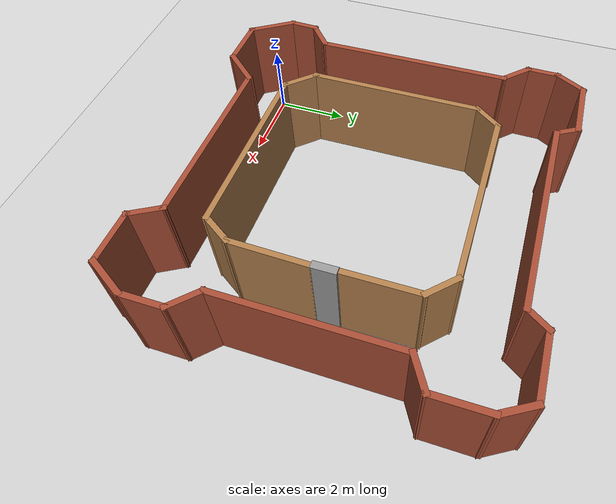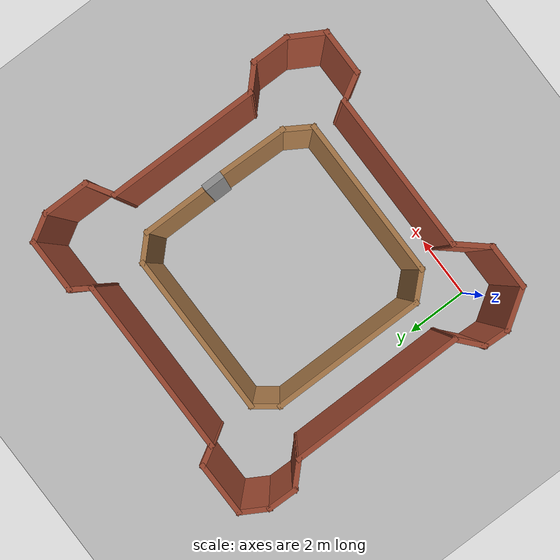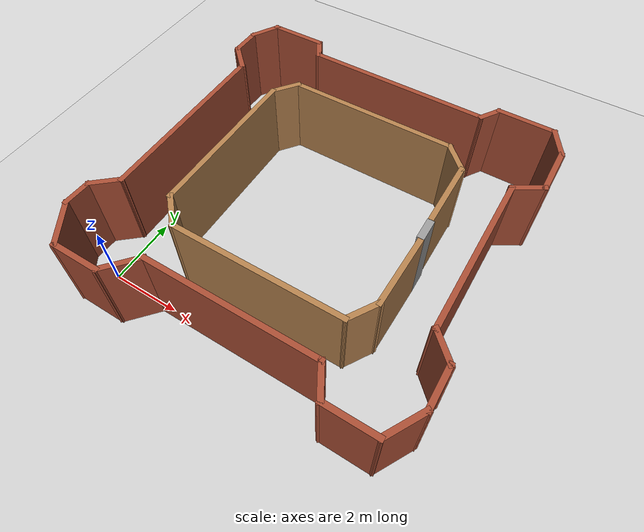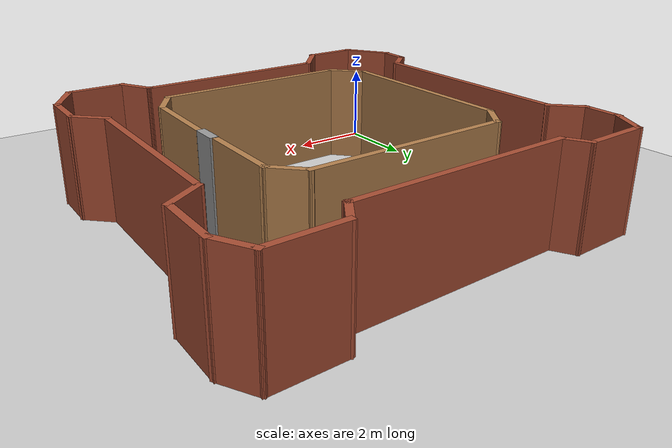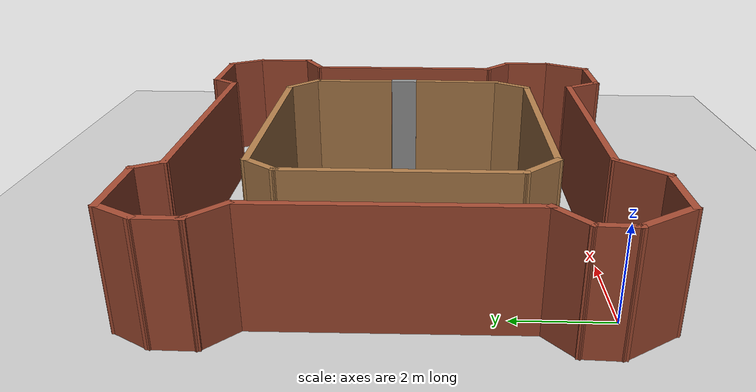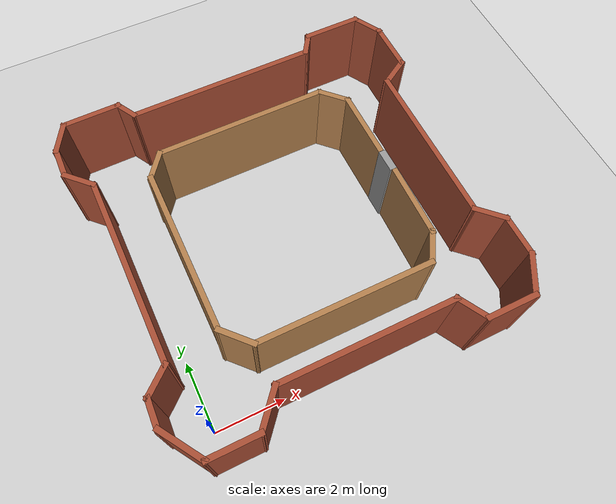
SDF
<sdf version='1.4'>
  <world name='default'>
    <!-- A global light source -->
    <include>
      <uri>model://sun</uri>
    </include>

    <!-- A ground plane -->
    <include>
      <uri>model://ground_plane</uri>
    </include>

    <physics type="ode">
      <real_time_update_rate>1000.0</real_time_update_rate>
      <max_step_size>0.001</max_step_size>
      <real_time_factor>1</real_time_factor>
      <ode>
        <solver>
          <type>quick</type>
          <iters>150</iters>
          <precon_iters>0</precon_iters>
          <sor>1.400000</sor>
          <use_dynamic_moi_rescaling>1</use_dynamic_moi_rescaling>
        </solver>
        <constraints>
          <cfm>0.00001</cfm>
          <erp>0.2</erp>
          <contact_max_correcting_vel>2000.000000</contact_max_correcting_vel>
          <contact_surface_layer>0.01000</contact_surface_layer>
        </constraints>
      </ode>
    </physics>

    <!-- A turtlebot symbol -->
    <include>
      <uri>model://castle</uri>
    </include>

    <scene>
      <ambient>0.4 0.4 0.4 1</ambient>
      <background>0.7 0.7 0.7 1</background>
      <shadows>true</shadows>
    </scene>

    <gui fullscreen='0'>
      <camera name='user_camera'>
        <pose>0.0 0.0 17.0 0 1.5708 0</pose>
        <view_controller>orbit</view_controller>
      </camera>
    </gui>
  </world>
</sdf>

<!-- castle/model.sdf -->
<sdf version='1.6'>
  <model name='castle.launch'>
    <pose frame=''>4.00899 4.03073 0 0 -0 0</pose>
    <link name='Door_0'>
      <collision name='Door_0_Collision'>
        <geometry>
          <box>
            <size>0.63 0.2 2.505</size>
          </box>
        </geometry>
        <pose frame=''>0 0 1.2535 0 -0 0</pose>
      </collision>
      <visual name='Door_0_Visual'>
        <pose frame=''>0 0 1.2535 0 -0 0</pose>
        <geometry>
          <box>
            <size>0.63 0.2 2.505</size>
          </box>
        </geometry>
        <material>
          <script>
            <uri>file://media/materials/scripts/gazebo.material</uri>
            <name>Gazebo/Grey</name>
          </script>
        </material>
      </visual>
      <pose frame=''>2.99574 0.054075 0 0 0 -1.56633</pose>
    </link>
    <link name='Wall_13'>
      <collision name='Wall_13_Collision'>
        <geometry>
          <box>
            <size>1.49 0.15 2.5</size>
          </box>
        </geometry>
        <pose frame=''>0 0 1.25 0 -0 0</pose>
      </collision>
      <visual name='Wall_13_Visual'>
        <pose frame=''>0 0 1.25 0 -0 0</pose>
        <geometry>
          <box>
            <size>1.49 0.15 2.5</size>
          </box>
        </geometry>
        <material>
          <script>
            <uri>file://media/materials/scripts/gazebo.material</uri>
            <name>Gazebo/Bricks</name>
          </script>
          <ambient>1 1 1 1</ambient>
        </material>
        <meta>
          <layer>0</layer>
        </meta>
      </visual>
      <pose frame=''>-3.66899 -4.92073 0 0 -0 0</pose>
    </link>
    <link name='Wall_14'>
      <collision name='Wall_14_Collision'>
        <geometry>
          <box>
            <size>1.24202 0.15 2.5</size>
          </box>
        </geometry>
        <pose frame=''>0 0 1.25 0 -0 0</pose>
      </collision>
      <visual name='Wall_14_Visual'>
        <pose frame=''>0 0 1.25 0 -0 0</pose>
        <geometry>
          <box>
            <size>1.24202 0.15 2.5</size>
          </box>
        </geometry>
        <material>
          <script>
            <uri>file://media/materials/scripts/gazebo.material</uri>
            <name>Gazebo/Bricks</name>
          </script>
          <ambient>1 1 1 1</ambient>
        </material>
        <meta>
          <layer>0</layer>
        </meta>
      </visual>
      <pose frame=''>-2.63899 -4.51023 0 0 -0 0.850846</pose>
    </link>
    <link name='Wall_16'>
      <collision name='Wall_16_Collision'>
        <geometry>
          <box>
            <size>5 0.15 2.5</size>
          </box>
        </geometry>
        <pose frame=''>0 0 1.25 0 -0 0</pose>
      </collision>
      <visual name='Wall_16_Visual'>
        <pose frame=''>0 0 1.25 0 -0 0</pose>
        <geometry>
          <box>
            <size>5 0.15 2.5</size>
          </box>
        </geometry>
        <material>
          <script>
            <uri>file://media/materials/scripts/gazebo.material</uri>
            <name>Gazebo/Bricks</name>
          </script>
          <ambient>1 1 1 1</ambient>
        </material>
        <meta>
          <layer>0</layer>
        </meta>
      </visual>
      <pose frame=''>0.146009 -4.09973 0 0 -0 0</pose>
    </link>
    <link name='Wall_17'>
      <collision name='Wall_17_Collision'>
        <geometry>
          <box>
            <size>1.0086 0.15 2.5</size>
          </box>
        </geometry>
        <pose frame=''>0 0 1.25 0 -0 0</pose>
      </collision>
      <visual name='Wall_17_Visual'>
        <pose frame=''>0 0 1.25 0 -0 0</pose>
        <geometry>
          <box>
            <size>1.0086 0.15 2.5</size>
          </box>
        </geometry>
        <material>
          <script>
            <uri>file://media/materials/scripts/gazebo.material</uri>
            <name>Gazebo/Bricks</name>
          </script>
          <ambient>1 1 1 1</ambient>
        </material>
        <meta>
          <layer>0</layer>
        </meta>
      </visual>
      <pose frame=''>2.78351 -4.47272 0 0 -0 -1.05295</pose>
    </link>
    <link name='Wall_18'>
      <collision name='Wall_18_Collision'>
        <geometry>
          <box>
            <size>1.5 0.15 2.5</size>
          </box>
        </geometry>
        <pose frame=''>0 0 1.25 0 -0 0</pose>
      </collision>
      <visual name='Wall_18_Visual'>
        <pose frame=''>0 0 1.25 0 -0 0</pose>
        <geometry>
          <box>
            <size>1.5 0.15 2.5</size>
          </box>
        </geometry>
        <material>
          <script>
            <uri>file://media/materials/scripts/gazebo.material</uri>
            <name>Gazebo/Bricks</name>
          </script>
          <ambient>1 1 1 1</ambient>
        </material>
        <meta>
          <layer>0</layer>
        </meta>
      </visual>
      <pose frame=''>3.67101 -4.84572 0 0 -0 0</pose>
    </link>
    <link name='Wall_21'>
      <collision name='Wall_21_Collision'>
        <geometry>
          <box>
            <size>1.25 0.15 2.5</size>
          </box>
        </geometry>
        <pose frame=''>0 0 1.25 0 -0 0</pose>
      </collision>
      <visual name='Wall_21_Visual'>
        <pose frame=''>0 0 1.25 0 -0 0</pose>
        <geometry>
          <box>
            <size>1.25 0.15 2.5</size>
          </box>
        </geometry>
        <material>
          <script>
            <uri>file://media/materials/scripts/gazebo.material</uri>
            <name>Gazebo/Bricks</name>
          </script>
          <ambient>1 1 1 1</ambient>
        </material>
        <meta>
          <layer>0</layer>
        </meta>
      </visual>
      <pose frame=''>4.62101 -4.36923 0 0 -0 1.04737</pose>
    </link>
    <link name='Wall_22'>
      <collision name='Wall_22_Collision'>
        <geometry>
          <box>
            <size>1.25 0.15 2.5</size>
          </box>
        </geometry>
        <pose frame=''>0 0 1.25 0 -0 0</pose>
      </collision>
      <visual name='Wall_22_Visual'>
        <pose frame=''>0 0 1.25 0 -0 0</pose>
        <geometry>
          <box>
            <size>1.25 0.15 2.5</size>
          </box>
        </geometry>
        <material>
          <script>
            <uri>file://media/materials/scripts/gazebo.material</uri>
            <name>Gazebo/Bricks</name>
          </script>
          <ambient>1 1 1 1</ambient>
        </material>
        <meta>
          <layer>0</layer>
        </meta>
      </visual>
      <pose frame=''>4.89601 -3.34273 0 0 -0 1.5708</pose>
    </link>
    <link name='Wall_23'>
      <collision name='Wall_23_Collision'>
        <geometry>
          <box>
            <size>0.990418 0.15 2.5</size>
          </box>
        </geometry>
        <pose frame=''>0 0 1.25 0 -0 0</pose>
      </collision>
      <visual name='Wall_23_Visual'>
        <pose frame=''>0 0 1.25 0 -0 0</pose>
        <geometry>
          <box>
            <size>0.990418 0.15 2.5</size>
          </box>
        </geometry>
        <material>
          <script>
            <uri>file://media/materials/scripts/gazebo.material</uri>
            <name>Gazebo/Bricks</name>
          </script>
          <ambient>1 1 1 1</ambient>
        </material>
        <meta>
          <layer>0</layer>
        </meta>
      </visual>
      <pose frame=''>4.59551 -2.49923 0 0 -0 2.36798</pose>
    </link>
    <link name='Wall_26'>
      <collision name='Wall_26_Collision'>
        <geometry>
          <box>
            <size>4.75004 0.15 2.5</size>
          </box>
        </geometry>
        <pose frame=''>0 0 1.25 0 -0 0</pose>
      </collision>
      <visual name='Wall_26_Visual'>
        <pose frame=''>0 0 1.25 0 -0 0</pose>
        <geometry>
          <box>
            <size>4.75004 0.15 2.5</size>
          </box>
        </geometry>
        <material>
          <script>
            <uri>file://media/materials/scripts/gazebo.material</uri>
            <name>Gazebo/Bricks</name>
          </script>
          <ambient>1 1 1 1</ambient>
        </material>
        <meta>
          <layer>0</layer>
        </meta>
      </visual>
      <pose frame=''>4.30501 0.094275 0 0 -0 1.56645</pose>
    </link>
    <link name='Wall_28'>
      <collision name='Wall_28_Collision'>
        <geometry>
          <box>
            <size>0.998259 0.15 2.5</size>
          </box>
        </geometry>
        <pose frame=''>0 0 1.25 0 -0 0</pose>
      </collision>
      <visual name='Wall_28_Visual'>
        <pose frame=''>0 0 1.25 0 -0 0</pose>
        <geometry>
          <box>
            <size>0.998259 0.15 2.5</size>
          </box>
        </geometry>
        <material>
          <script>
            <uri>file://media/materials/scripts/gazebo.material</uri>
            <name>Gazebo/Bricks</name>
          </script>
          <ambient>1 1 1 1</ambient>
        </material>
        <meta>
          <layer>0</layer>
        </meta>
      </visual>
      <pose frame=''>4.67801 2.61377 0 0 -0 0.543856</pose>
    </link>
    <link name='Wall_30'>
      <collision name='Wall_30_Collision'>
        <geometry>
          <box>
            <size>1.5 0.15 2.5</size>
          </box>
        </geometry>
        <pose frame=''>0 0 1.25 0 -0 0</pose>
      </collision>
      <visual name='Wall_30_Visual'>
        <pose frame=''>0 0 1.25 0 -0 0</pose>
        <geometry>
          <box>
            <size>1.5 0.15 2.5</size>
          </box>
        </geometry>
        <material>
          <script>
            <uri>file://media/materials/scripts/gazebo.material</uri>
            <name>Gazebo/Bricks</name>
          </script>
          <ambient>1 1 1 1</ambient>
        </material>
        <meta>
          <layer>0</layer>
        </meta>
      </visual>
      <pose frame=''>5.04101 3.50827 0 0 -0 1.5708</pose>
    </link>
    <link name='Wall_31'>
      <collision name='Wall_31_Collision'>
        <geometry>
          <box>
            <size>1 0.15 2.5</size>
          </box>
        </geometry>
        <pose frame=''>0 0 1.25 0 -0 0</pose>
      </collision>
      <visual name='Wall_31_Visual'>
        <pose frame=''>0 0 1.25 0 -0 0</pose>
        <geometry>
          <box>
            <size>1 0.15 2.5</size>
          </box>
        </geometry>
        <material>
          <script>
            <uri>file://media/materials/scripts/gazebo.material</uri>
            <name>Gazebo/Bricks</name>
          </script>
          <ambient>1 1 1 1</ambient>
        </material>
        <meta>
          <layer>0</layer>
        </meta>
      </visual>
      <pose frame=''>4.82851 4.55128 0 0 -0 2.09447</pose>
    </link>
    <link name='Wall_32'>
      <collision name='Wall_32_Collision'>
        <geometry>
          <box>
            <size>1.75 0.15 2.5</size>
          </box>
        </geometry>
        <pose frame=''>0 0 1.25 0 -0 0</pose>
      </collision>
      <visual name='Wall_32_Visual'>
        <pose frame=''>0 0 1.25 0 -0 0</pose>
        <geometry>
          <box>
            <size>1.75 0.15 2.5</size>
          </box>
        </geometry>
        <material>
          <script>
            <uri>file://media/materials/scripts/gazebo.material</uri>
            <name>Gazebo/Bricks</name>
          </script>
          <ambient>1 1 1 1</ambient>
        </material>
        <meta>
          <layer>0</layer>
        </meta>
      </visual>
      <pose frame=''>3.81601 4.91927 0 0 -0 3.14159</pose>
    </link>
    <link name='Wall_33'>
      <collision name='Wall_33_Collision'>
        <geometry>
          <box>
            <size>0.769121 0.15 2.5</size>
          </box>
        </geometry>
        <pose frame=''>0 0 1.25 0 -0 0</pose>
      </collision>
      <visual name='Wall_33_Visual'>
        <pose frame=''>0 0 1.25 0 -0 0</pose>
        <geometry>
          <box>
            <size>0.769121 0.15 2.5</size>
          </box>
        </geometry>
        <material>
          <script>
            <uri>file://media/materials/scripts/gazebo.material</uri>
            <name>Gazebo/Bricks</name>
          </script>
          <ambient>1 1 1 1</ambient>
        </material>
        <meta>
          <layer>0</layer>
        </meta>
      </visual>
      <pose frame=''>2.84401 4.66177 0 0 -0 -2.1597</pose>
    </link>
    <link name='Wall_34'>
      <collision name='Wall_34_Collision'>
        <geometry>
          <box>
            <size>5.5 0.15 2.5</size>
          </box>
        </geometry>
        <pose frame=''>0 0 1.25 0 -0 0</pose>
      </collision>
      <visual name='Wall_34_Visual'>
        <pose frame=''>0 0 1.25 0 -0 0</pose>
        <geometry>
          <box>
            <size>5.5 0.15 2.5</size>
          </box>
        </geometry>
        <material>
          <script>
            <uri>file://media/materials/scripts/gazebo.material</uri>
            <name>Gazebo/Bricks</name>
          </script>
          <ambient>1 1 1 1</ambient>
        </material>
        <meta>
          <layer>0</layer>
        </meta>
      </visual>
      <pose frame=''>-0.002991 4.40428 0 0 -0 3.14159</pose>
    </link>
    <link name='Wall_37'>
      <collision name='Wall_37_Collision'>
        <geometry>
          <box>
            <size>0.75 0.15 2.5</size>
          </box>
        </geometry>
        <pose frame=''>0 0 1.25 0 -0 0</pose>
      </collision>
      <visual name='Wall_37_Visual'>
        <pose frame=''>0 0 1.25 0 -0 0</pose>
        <geometry>
          <box>
            <size>0.75 0.15 2.5</size>
          </box>
        </geometry>
        <material>
          <script>
            <uri>file://media/materials/scripts/gazebo.material</uri>
            <name>Gazebo/Bricks</name>
          </script>
          <ambient>1 1 1 1</ambient>
        </material>
        <meta>
          <layer>0</layer>
        </meta>
      </visual>
      <pose frame=''>-2.82799 4.66427 0 0 -0 2.09408</pose>
    </link>
    <link name='Wall_38'>
      <collision name='Wall_38_Collision'>
        <geometry>
          <box>
            <size>1.73687 0.15 2.5</size>
          </box>
        </geometry>
        <pose frame=''>0 0 1.25 0 -0 0</pose>
      </collision>
      <visual name='Wall_38_Visual'>
        <pose frame=''>0 0 1.25 0 -0 0</pose>
        <geometry>
          <box>
            <size>1.73687 0.15 2.5</size>
          </box>
        </geometry>
        <material>
          <script>
            <uri>file://media/materials/scripts/gazebo.material</uri>
            <name>Gazebo/Bricks</name>
          </script>
          <ambient>1 1 1 1</ambient>
        </material>
        <meta>
          <layer>0</layer>
        </meta>
      </visual>
      <pose frame=''>-3.77149 4.91777 0 0 -0 -3.1334</pose>
    </link>
    <link name='Wall_39'>
      <collision name='Wall_39_Collision'>
        <geometry>
          <box>
            <size>0.99985 0.15 2.5</size>
          </box>
        </geometry>
        <pose frame=''>0 0 1.25 0 -0 0</pose>
      </collision>
      <visual name='Wall_39_Visual'>
        <pose frame=''>0 0 1.25 0 -0 0</pose>
        <geometry>
          <box>
            <size>0.99985 0.15 2.5</size>
          </box>
        </geometry>
        <material>
          <script>
            <uri>file://media/materials/scripts/gazebo.material</uri>
            <name>Gazebo/Bricks</name>
          </script>
          <ambient>1 1 1 1</ambient>
        </material>
        <meta>
          <layer>0</layer>
        </meta>
      </visual>
      <pose frame=''>-4.77749 4.54328 0 0 -0 -2.09447</pose>
    </link>
    <link name='Wall_40'>
      <collision name='Wall_40_Collision'>
        <geometry>
          <box>
            <size>0.987101 0.15 2.5</size>
          </box>
        </geometry>
        <pose frame=''>0 0 1.25 0 -0 0</pose>
      </collision>
      <visual name='Wall_40_Visual'>
        <pose frame=''>0 0 1.25 0 -0 0</pose>
        <geometry>
          <box>
            <size>0.987101 0.15 2.5</size>
          </box>
        </geometry>
        <material>
          <script>
            <uri>file://media/materials/scripts/gazebo.material</uri>
            <name>Gazebo/Bricks</name>
          </script>
          <ambient>1 1 1 1</ambient>
        </material>
        <meta>
          <layer>0</layer>
        </meta>
      </visual>
      <pose frame=''>-4.99649 3.75678 0 0 -0 -1.58633</pose>
    </link>
    <link name='Wall_41'>
      <collision name='Wall_41_Collision'>
        <geometry>
          <box>
            <size>1 0.15 2.5</size>
          </box>
        </geometry>
        <pose frame=''>0 0 1.25 0 -0 0</pose>
      </collision>
      <visual name='Wall_41_Visual'>
        <pose frame=''>0 0 1.25 0 -0 0</pose>
        <geometry>
          <box>
            <size>1 0.15 2.5</size>
          </box>
        </geometry>
        <material>
          <script>
            <uri>file://media/materials/scripts/gazebo.material</uri>
            <name>Gazebo/Bricks</name>
          </script>
          <ambient>1 1 1 1</ambient>
        </material>
        <meta>
          <layer>0</layer>
        </meta>
      </visual>
      <pose frame=''>-4.70249 3.03777 0 0 -0 -0.785398</pose>
    </link>
    <link name='Wall_43'>
      <collision name='Wall_43_Collision'>
        <geometry>
          <box>
            <size>5.47004 0.15 2.5</size>
          </box>
        </geometry>
        <pose frame=''>0 0 1.25 0 -0 0</pose>
      </collision>
      <visual name='Wall_43_Visual'>
        <pose frame=''>0 0 1.25 0 -0 0</pose>
        <geometry>
          <box>
            <size>5.47004 0.15 2.5</size>
          </box>
        </geometry>
        <material>
          <script>
            <uri>file://media/materials/scripts/gazebo.material</uri>
            <name>Gazebo/Bricks</name>
          </script>
          <ambient>1 1 1 1</ambient>
        </material>
        <meta>
          <layer>0</layer>
        </meta>
      </visual>
      <pose frame=''>-4.38699 0.077275 0 0 -0 -1.56516</pose>
    </link>
    <link name='Wall_47'>
      <collision name='Wall_47_Collision'>
        <geometry>
          <box>
            <size>0.99086 0.15 2.5</size>
          </box>
        </geometry>
        <pose frame=''>0 0 1.25 0 -0 0</pose>
      </collision>
      <visual name='Wall_47_Visual'>
        <pose frame=''>0 0 1.25 0 -0 0</pose>
        <geometry>
          <box>
            <size>0.99086 0.15 2.5</size>
          </box>
        </geometry>
        <material>
          <script>
            <uri>file://media/materials/scripts/gazebo.material</uri>
            <name>Gazebo/Bricks</name>
          </script>
          <ambient>1 1 1 1</ambient>
        </material>
        <meta>
          <layer>0</layer>
        </meta>
      </visual>
      <pose frame=''>-4.69099 -2.85672 0 0 -0 -2.43194</pose>
    </link>
    <link name='Wall_49'>
      <collision name='Wall_49_Collision'>
        <geometry>
          <box>
            <size>0.880695 0.15 2.5</size>
          </box>
        </geometry>
        <pose frame=''>0 0 1.25 0 -0 0</pose>
      </collision>
      <visual name='Wall_49_Visual'>
        <pose frame=''>0 0 1.25 0 -0 0</pose>
        <geometry>
          <box>
            <size>0.880695 0.15 2.5</size>
          </box>
        </geometry>
        <material>
          <script>
            <uri>file://media/materials/scripts/gazebo.material</uri>
            <name>Gazebo/Bricks</name>
          </script>
          <ambient>1 1 1 1</ambient>
        </material>
        <meta>
          <layer>0</layer>
        </meta>
      </visual>
      <pose frame=''>-5.02499 -3.49573 0 0 -0 -1.61187</pose>
    </link>
    <link name='Wall_50'>
      <collision name='Wall_50_Collision'>
        <geometry>
          <box>
            <size>1.42087 0.15 2.5</size>
          </box>
        </geometry>
        <pose frame=''>0 0 1.25 0 -0 0</pose>
      </collision>
      <visual name='Wall_50_Visual'>
        <pose frame=''>0 0 1.25 0 -0 0</pose>
        <geometry>
          <box>
            <size>1.42087 0.15 2.5</size>
          </box>
        </geometry>
        <material>
          <script>
            <uri>file://media/materials/scripts/gazebo.material</uri>
            <name>Gazebo/Bricks</name>
          </script>
          <ambient>1 1 1 1</ambient>
        </material>
        <meta>
          <layer>0</layer>
        </meta>
      </visual>
      <pose frame=''>-4.68949 -4.39072 0 0 -0 -0.986504</pose>
    </link>
    <link name='Wall_52'>
      <collision name='Wall_52_Collision'>
        <geometry>
          <box>
            <size>4.98521 0.15 2.5</size>
          </box>
        </geometry>
        <pose frame=''>0 0 1.25 0 -0 0</pose>
      </collision>
      <visual name='Wall_52_Visual'>
        <pose frame=''>0 0 1.25 0 -0 0</pose>
        <geometry>
          <box>
            <size>4.98521 0.15 2.5</size>
          </box>
        </geometry>
        <material>
          <script>
            <uri>file://media/materials/scripts/gazebo.material</uri>
            <name>Gazebo/Wood</name>
          </script>
          <ambient>1 1 1 1</ambient>
        </material>
        <meta>
          <layer>0</layer>
        </meta>
      </visual>
      <pose frame=''>0.103509 -3.02172 0 0 -0 0</pose>
    </link>
    <link name='Wall_53'>
      <collision name='Wall_53_Collision'>
        <geometry>
          <box>
            <size>1.00823 0.15 2.5</size>
          </box>
        </geometry>
        <pose frame=''>0 0 1.25 0 -0 0</pose>
      </collision>
      <visual name='Wall_53_Visual'>
        <pose frame=''>0 0 1.25 0 -0 0</pose>
        <geometry>
          <box>
            <size>1.00823 0.15 2.5</size>
          </box>
        </geometry>
        <material>
          <script>
            <uri>file://media/materials/scripts/gazebo.material</uri>
            <name>Gazebo/Wood</name>
          </script>
          <ambient>1 1 1 1</ambient>
        </material>
        <meta>
          <layer>0</layer>
        </meta>
      </visual>
      <pose frame=''>2.74851 -2.65822 0 0 -0 1.01158</pose>
    </link>
    <link name='Wall_57'>
      <collision name='Wall_57_Collision'>
        <geometry>
          <box>
            <size>1 0.15 2.5</size>
          </box>
        </geometry>
        <pose frame=''>0 0 1.25 0 -0 0</pose>
      </collision>
      <visual name='Wall_57_Visual'>
        <pose frame=''>0 0 1.25 0 -0 0</pose>
        <geometry>
          <box>
            <size>1 0.15 2.5</size>
          </box>
        </geometry>
        <material>
          <script>
            <uri>file://media/materials/scripts/gazebo.material</uri>
            <name>Gazebo/Wood</name>
          </script>
          <ambient>1 1 1 1</ambient>
        </material>
        <meta>
          <layer>0</layer>
        </meta>
      </visual>
      <pose frame=''>2.67551 2.60577 0 0 -0 2.35619</pose>
    </link>
    <link name='Wall_58'>
      <collision name='Wall_58_Collision'>
        <geometry>
          <box>
            <size>5 0.15 2.5</size>
          </box>
        </geometry>
        <pose frame=''>0 0 1.25 0 -0 0</pose>
      </collision>
      <visual name='Wall_58_Visual'>
        <pose frame=''>0 0 1.25 0 -0 0</pose>
        <geometry>
          <box>
            <size>5 0.15 2.5</size>
          </box>
        </geometry>
        <material>
          <script>
            <uri>file://media/materials/scripts/gazebo.material</uri>
            <name>Gazebo/Wood</name>
          </script>
          <ambient>0.996078 0.47451 0.0196078 1</ambient>
        </material>
        <meta>
          <layer>0</layer>
        </meta>
      </visual>
      <pose frame=''>-0.049991 2.90627 0 0 -0 3.14159</pose>
    </link>
    <link name='Wall_65'>
      <collision name='Wall_65_Collision'>
        <geometry>
          <box>
            <size>0.943424 0.15 2.5</size>
          </box>
        </geometry>
        <pose frame=''>0 0 1.25 0 -0 0</pose>
      </collision>
      <visual name='Wall_65_Visual'>
        <pose frame=''>0 0 1.25 0 -0 0</pose>
        <geometry>
          <box>
            <size>0.943424 0.15 2.5</size>
          </box>
        </geometry>
        <material>
          <script>
            <uri>file://media/materials/scripts/gazebo.material</uri>
            <name>Gazebo/Wood</name>
          </script>
          <ambient>1 1 1 1</ambient>
        </material>
        <meta>
          <layer>0</layer>
        </meta>
      </visual>
      <pose frame=''>-2.71549 2.59077 0 0 -0 -2.22211</pose>
    </link>
    <link name='Wall_67'>
      <collision name='Wall_67_Collision'>
        <geometry>
          <box>
            <size>4.7657 0.15 2.5</size>
          </box>
        </geometry>
        <pose frame=''>0 0 1.25 0 -0 0</pose>
      </collision>
      <visual name='Wall_67_Visual'>
        <pose frame=''>0 0 1.25 0 -0 0</pose>
        <geometry>
          <box>
            <size>4.7657 0.15 2.5</size>
          </box>
        </geometry>
        <material>
          <script>
            <uri>file://media/materials/scripts/gazebo.material</uri>
            <name>Gazebo/Wood</name>
          </script>
          <ambient>1 1 1 1</ambient>
        </material>
        <meta>
          <layer>0</layer>
        </meta>
      </visual>
      <pose frame=''>-2.95599 -0.032725 0 0 -0 -1.5708</pose>
    </link>
    <link name='Wall_69'>
      <collision name='Wall_69_Collision'>
        <geometry>
          <box>
            <size>1.08655 0.15 2.5</size>
          </box>
        </geometry>
        <pose frame=''>0 0 1.25 0 -0 0</pose>
      </collision>
      <visual name='Wall_69_Visual'>
        <pose frame=''>0 0 1.25 0 -0 0</pose>
        <geometry>
          <box>
            <size>1.08655 0.15 2.5</size>
          </box>
        </geometry>
        <material>
          <script>
            <uri>file://media/materials/scripts/gazebo.material</uri>
            <name>Gazebo/Wood</name>
          </script>
          <ambient>1 1 1 1</ambient>
        </material>
        <meta>
          <layer>0</layer>
        </meta>
      </visual>
      <pose frame=''>-2.63499 -2.68122 0 0 -0 2.32673</pose>
    </link>
    <link name='Wall_71'>
      <collision name='Wall_71_Collision'>
        <geometry>
          <box>
            <size>2 0.15 2.5</size>
          </box>
        </geometry>
        <pose frame=''>0 0 1.25 0 -0 0</pose>
      </collision>
      <visual name='Wall_71_Visual'>
        <pose frame=''>0 0 1.25 0 -0 0</pose>
        <geometry>
          <box>
            <size>2 0.15 2.5</size>
          </box>
        </geometry>
        <material>
          <script>
            <uri>file://media/materials/scripts/gazebo.material</uri>
            <name>Gazebo/Wood</name>
          </script>
          <ambient>1 1 1 1</ambient>
        </material>
        <meta>
          <layer>0</layer>
        </meta>
      </visual>
      <pose frame=''>2.97601 1.38027 0 0 -0 -1.5708</pose>
    </link>
    <link name='Wall_73'>
      <collision name='Wall_73_Collision'>
        <geometry>
          <box>
            <size>2.13792 0.15 2.5</size>
          </box>
        </geometry>
        <pose frame=''>0 0 1.25 0 -0 0</pose>
      </collision>
      <visual name='Wall_73_Visual'>
        <pose frame=''>0 0 1.25 0 -0 0</pose>
        <geometry>
          <box>
            <size>2.13792 0.15 2.5</size>
          </box>
        </geometry>
        <material>
          <script>
            <uri>file://media/materials/scripts/gazebo.material</uri>
            <name>Gazebo/Wood</name>
          </script>
          <ambient>1 1 1 1</ambient>
        </material>
        <meta>
          <layer>0</layer>
        </meta>
      </visual>
      <pose frame=''>2.99851 -1.30072 0 0 -0 -1.59343</pose>
    </link>
    <static>1</static>
  </model>
</sdf>
